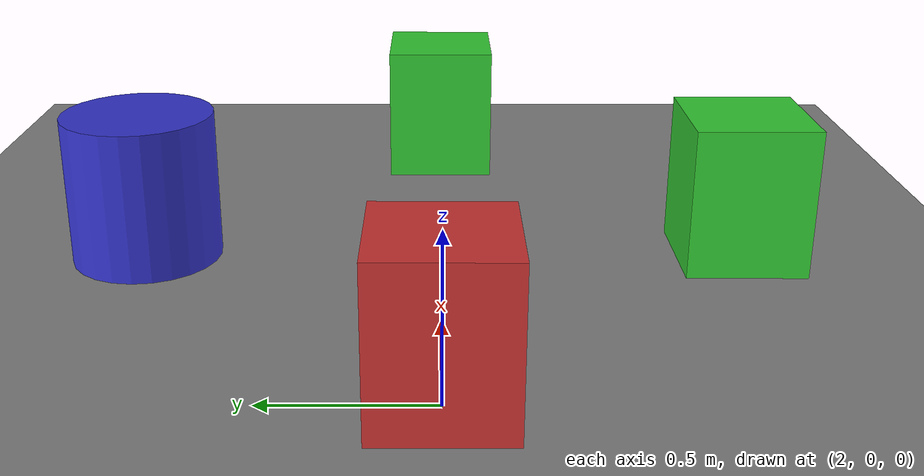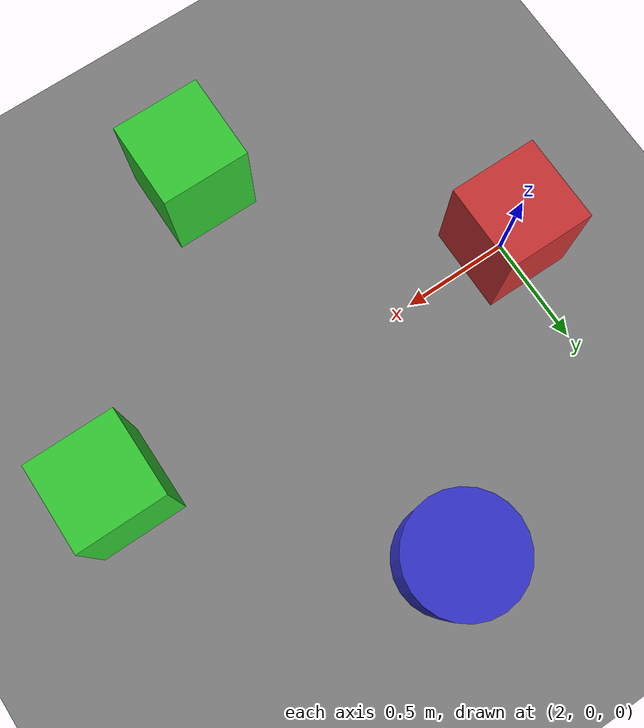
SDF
<?xml version="1.0"?>
<sdf version="1.9">
  <world name="obstacles_world">

    <!-- Plugins système requis par Gazebo Harmonic (gz-sim) -->
    <plugin filename="gz-sim-physics-system" name="gz::sim::systems::Physics"/>
    <plugin filename="gz-sim-sensors-system" name="gz::sim::systems::Sensors">
      <render_engine>ogre2</render_engine>
    </plugin>
    <plugin filename="gz-sim-scene-broadcaster-system" name="gz::sim::systems::SceneBroadcaster"/>
    <plugin filename="gz-sim-user-commands-system" name="gz::sim::systems::UserCommands"/>

    <!-- Sol et lumière définis directement en SDF (pas de dépendance au
         dépôt de modèles Fuel en ligne, qui n'est pas accessible sur tous
         les rosjects) -->
    <light type="directional" name="sun">
      <cast_shadows>true</cast_shadows>
      <pose>0 0 10 0 0 0</pose>
      <diffuse>0.8 0.8 0.8 1</diffuse>
      <specular>0.2 0.2 0.2 1</specular>
      <attenuation>
        <range>1000</range>
        <constant>0.9</constant>
        <linear>0.01</linear>
        <quadratic>0.001</quadratic>
      </attenuation>
      <direction>-0.5 0.1 -0.9</direction>
    </light>

    <model name="ground_plane">
      <static>true</static>
      <link name="link">
        <collision name="collision">
          <geometry><plane><normal>0 0 1</normal><size>100 100</size></plane></geometry>
        </collision>
        <visual name="visual">
          <geometry><plane><normal>0 0 1</normal><size>100 100</size></plane></geometry>
          <material><ambient>0.5 0.5 0.5 1</ambient><diffuse>0.5 0.5 0.5 1</diffuse></material>
        </visual>
      </link>
    </model>

    <physics name="default_physics" type="ode">
      <max_step_size>0.001</max_step_size>
      <real_time_factor>1</real_time_factor>
      <real_time_update_rate>1000</real_time_update_rate>
    </physics>

    <model name="obstacle_1">
      <static>true</static>
      <pose>2 0 0.25 0 0 0</pose>
      <link name="link">
        <collision name="collision">
          <geometry><box><size>0.4 0.4 0.5</size></box></geometry>
        </collision>
        <visual name="visual">
          <geometry><box><size>0.4 0.4 0.5</size></box></geometry>
          <material><ambient>0.8 0.2 0.2 1</ambient></material>
        </visual>
      </link>
    </model>

    <model name="obstacle_2">
      <static>true</static>
      <pose>3 1 0.25 0 0 0</pose>
      <link name="link">
        <collision name="collision">
          <geometry><cylinder><radius>0.25</radius><length>0.5</length></cylinder></geometry>
        </collision>
        <visual name="visual">
          <geometry><cylinder><radius>0.25</radius><length>0.5</length></cylinder></geometry>
          <material><ambient>0.2 0.2 0.8 1</ambient></material>
        </visual>
      </link>
    </model>

    <model name="obstacle_3">
      <static>true</static>
      <pose>3 -1 0.25 0 0 0</pose>
      <link name="link">
        <collision name="collision">
          <geometry><box><size>0.4 0.4 0.5</size></box></geometry>
        </collision>
        <visual name="visual">
          <geometry><box><size>0.4 0.4 0.5</size></box></geometry>
          <material><ambient>0.2 0.8 0.2 1</ambient></material>
        </visual>
      </link>
    </model>

    <model name="obstacle_4">
      <static>true</static>
      <pose>4 0 0.25 0 0 0</pose>
      <link name="link">
        <collision name="collision">
          <geometry><box><size>0.4 0.4 0.5</size></box></geometry>
        </collision>
        <visual name="visual">
          <geometry><box><size>0.4 0.4 0.5</size></box></geometry>
          <material><ambient>0.2 0.8 0.2 1</ambient></material>
        </visual>
      </link>
    </model>

  </world>
</sdf>
